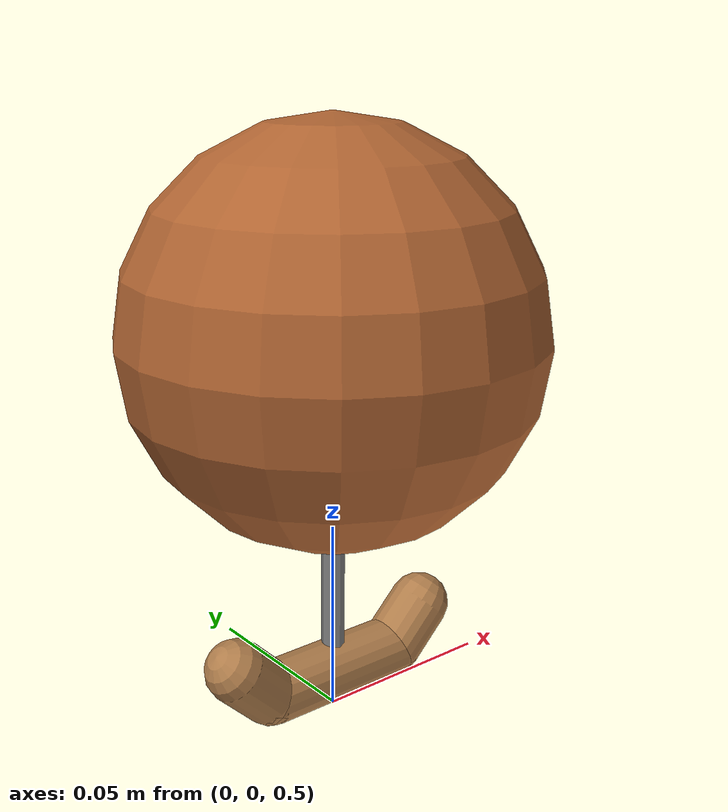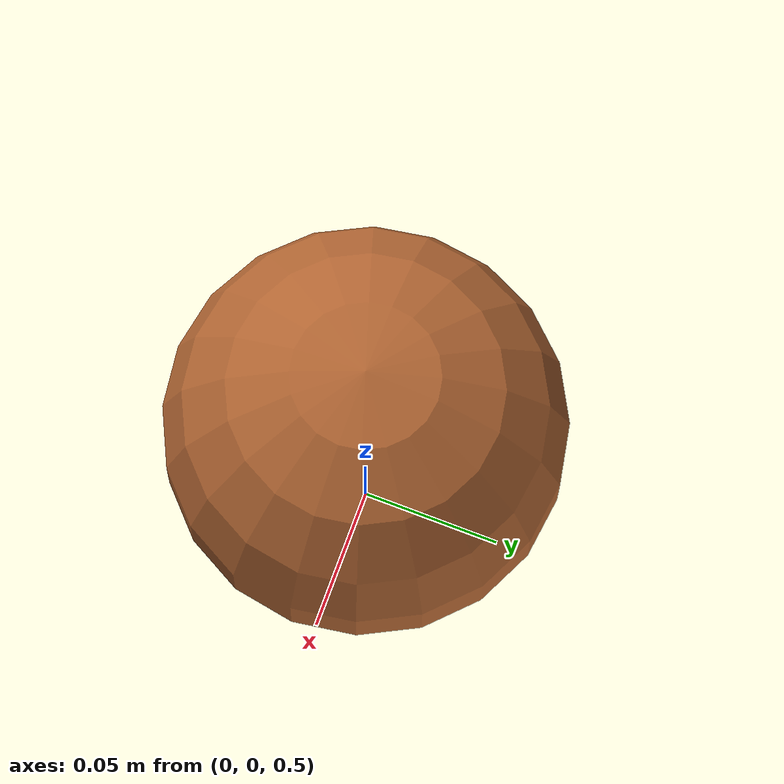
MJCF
<mujoco model="kendama ball in cup">

  <!-- ## Based on the ball_in_cup.xml from dm_control -->
  <include file="./common/visual.xml"/>
  <include file="./common/materials.xml"/>

  <default>
    <velocity ctrllimited="true" ctrlrange="-200 200" gear="20"/>
    <default class="cup">
      <joint type="slide" damping="5e-4"/>
      <geom type="capsule" size=".008" material="self" />
    </default>

    <default class="bouncy">
      <geom condim="6" priority="1" friction="0.5 0.001 0.001" solref="-5000 -55.5" solimp="0.5 0.9 0.01"/>
    </default>
    <geom solimp=".9 .9 .01" solref="0.03 0.25" />
  </default>

  <worldbody>
    <light name="light" directional="true" diffuse=".6 .6 .6" pos="0 0 2" specular=".3 .3 .3"/>
    <camera name="cam0" pos="0 -1 .8" xyaxes="1 0 0 0 1 2"/>
    <camera name="cam1" pos="0 -1 .4" xyaxes="1 0 0 0 0 1" />
    <camera name="cam2" pos="0 -1.4 1.2" xyaxes="1 0 0 0 1 2"/>

    <body name="cup" pos="0 0 .6" childclass="cup">
      <joint name="cup_x" axis="1 0 0"/>
      <joint name="cup_z" axis="0 0 1"/>
      <geom name="cup_part_1" fromto="-.03 0 -.08 -.02 0 -.09" />
      <geom name="cup_part_2" fromto="-.02 0 -.09 .02 0 -.09"  mass="1"/>
      <geom name="cup_part_3" fromto=".02 0 -.09 .03 0 -.08" />
      <site name="cup" pos="0 0 -.09" size=".005"/>
      <site name="target" type="box" pos="0 0 -.05" size=".075 .006 .005" group="4"/>
    </body>

    <body name="ball" pos="0 0 .6">
      <joint name="ball_x" type="slide" axis="1 0 0" />
      <joint name="ball_z" type="slide" axis="0 0 1"/>
      <geom name="ball" type="sphere" size=".0525" material="effector" mass="0.005" class="bouncy"/>
      <site name="ball" size=".005"/>
    </body>
  </worldbody>

  <actuator>
    <velocity name="x" joint="cup_x" />
    <velocity name="z" joint="cup_z" />
    <motor name="Fz" joint="cup_z" gear="1" ctrllimited="true" ctrlrange="-10 10"/>
  </actuator>

  <tendon>
    <spatial name="string" limited="true" range="0 0.43" width="0.003">
      <site site="ball"/>
      <site site="cup"/>
    </spatial>
  </tendon>

</mujoco>

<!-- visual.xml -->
<mujoco>
    <visual>
        <headlight ambient=".4 .4 .4" diffuse=".8 .8 .8" specular="0.1 0.1 0.1"/>
        <map znear=".01"/>
        <quality shadowsize="2048"/>
    </visual>
</mujoco>

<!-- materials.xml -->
<!--
Common textures, colors and materials to be used throughout this suite. Some
materials such as xxx_highlight are activated on occurence of certain events,
for example receiving a positive reward.
-->
<mujoco>
    <asset>
        <texture name="grid" type="2d" builtin="checker" rgb1=".1 .2 .3" rgb2=".2 .3 .4" width="300" height="300" mark="edge" markrgb=".2 .3 .4"/>
        <material name="grid" texture="grid" texrepeat="1 1" texuniform="true" reflectance=".2"/>
        <material name="self" rgba=".7 .5 .3 1"/>
        <material name="self_default" rgba=".7 .5 .3 1"/>
        <material name="self_highlight" rgba="0 .5 .3 1"/>
        <material name="effector" rgba=".7 .4 .2 1"/>
        <material name="effector_default" rgba=".7 .4 .2 1"/>
        <material name="effector_highlight" rgba="0 .5 .3 1"/>
        <material name="decoration" rgba=".3 .5 .7 1"/>
        <material name="eye" rgba="0 .2 1 1"/>
        <material name="target" rgba=".6 .3 .3 1"/>
        <material name="target_default" rgba=".6 .3 .3 1"/>
        <material name="target_highlight" rgba=".6 .3 .3 .4"/>
        <material name="site" rgba=".5 .5 .5 .3"/>
    </asset>
</mujoco>
